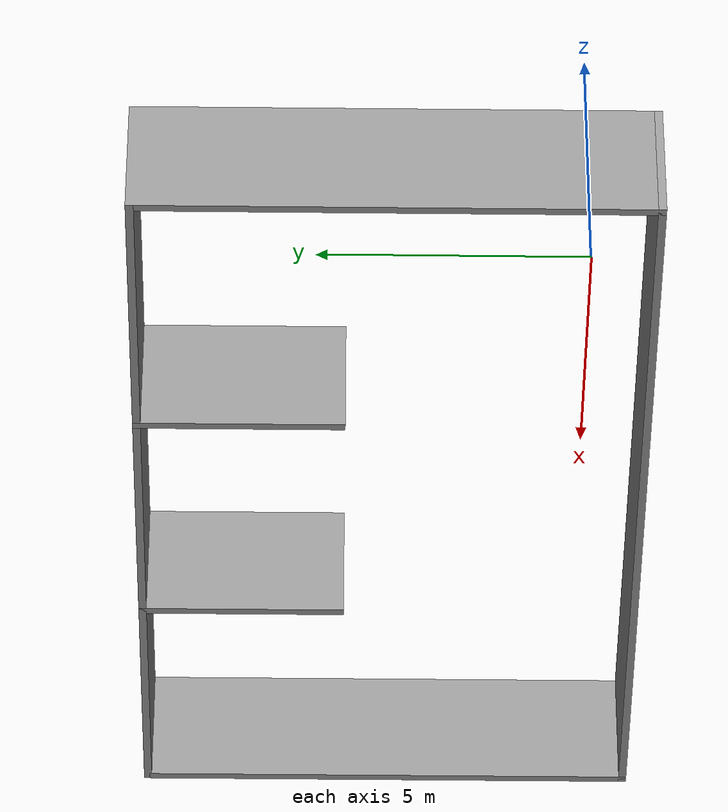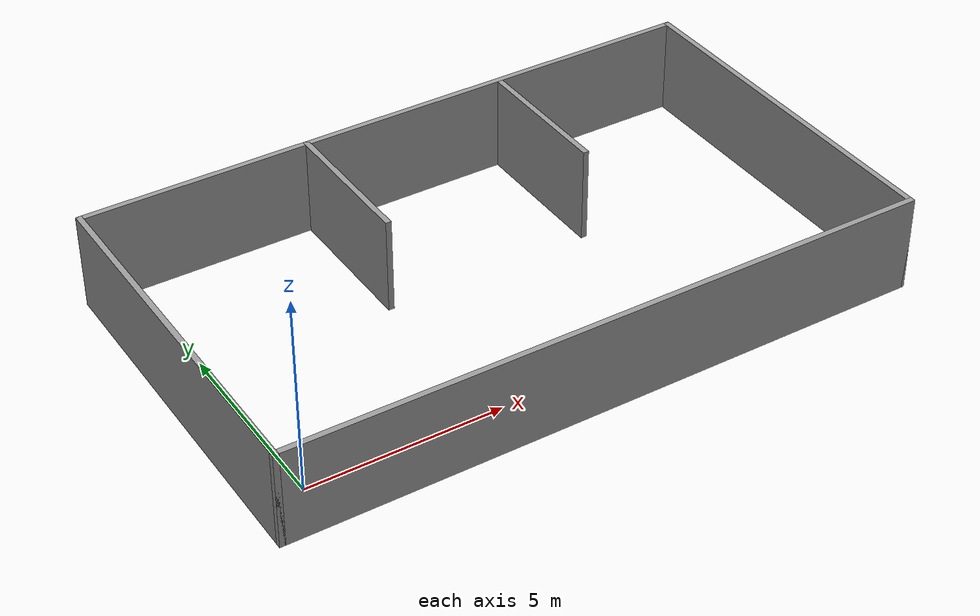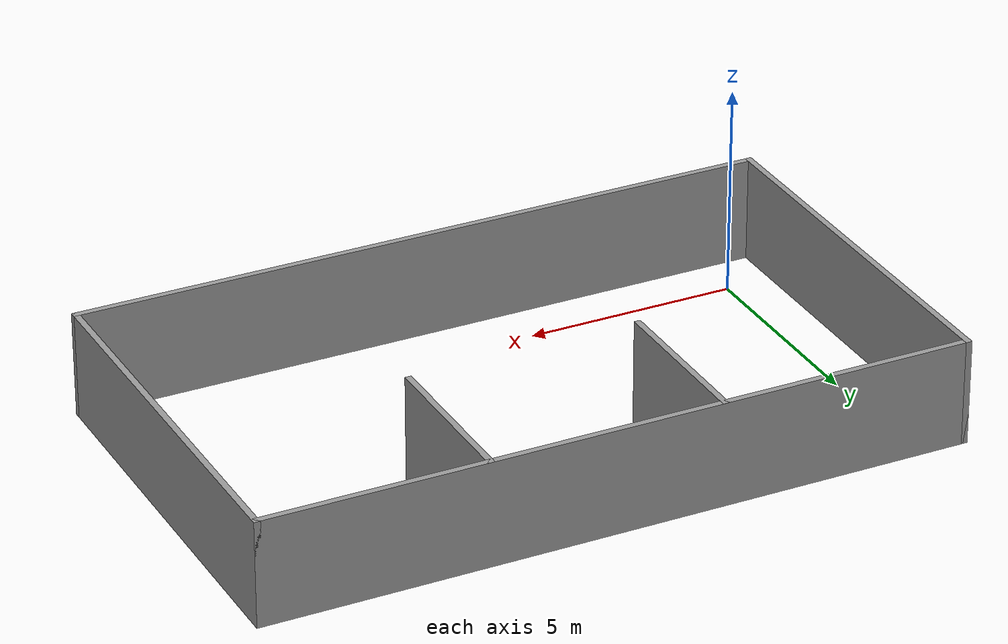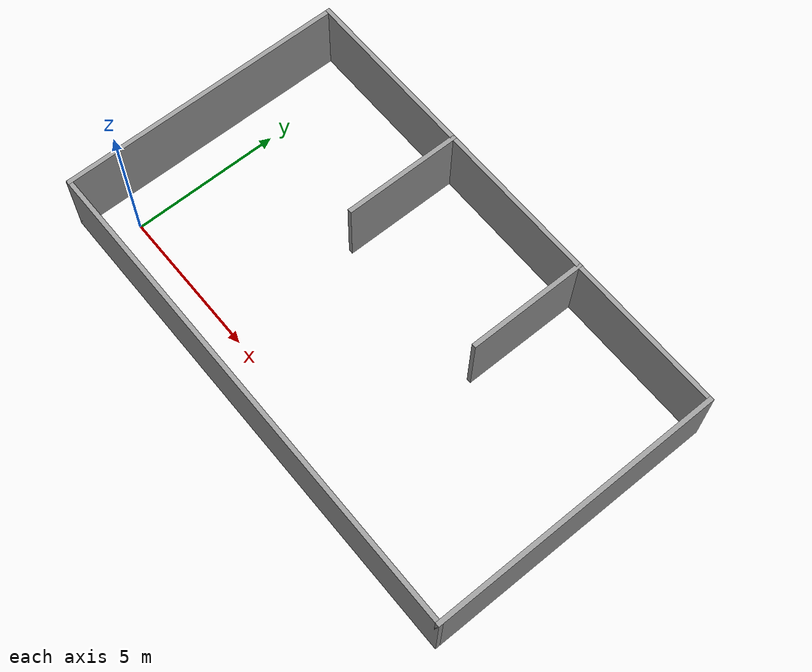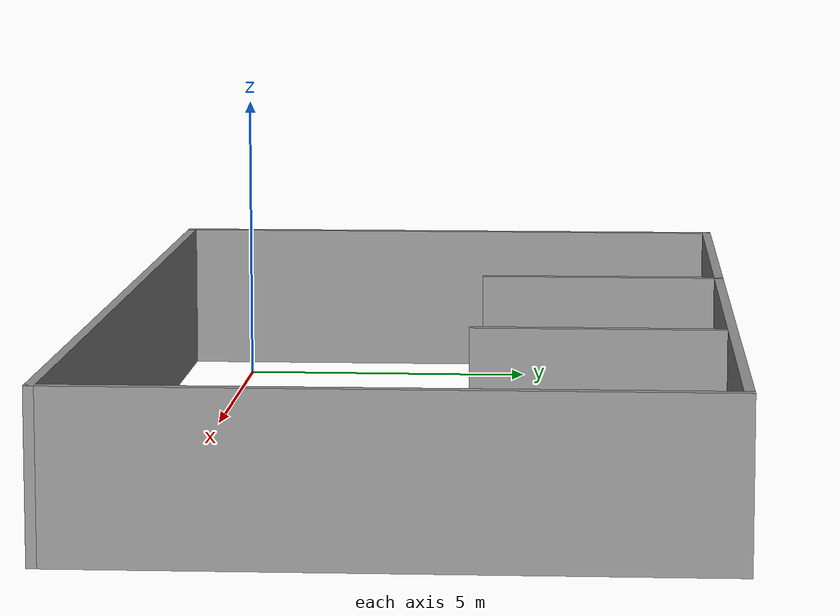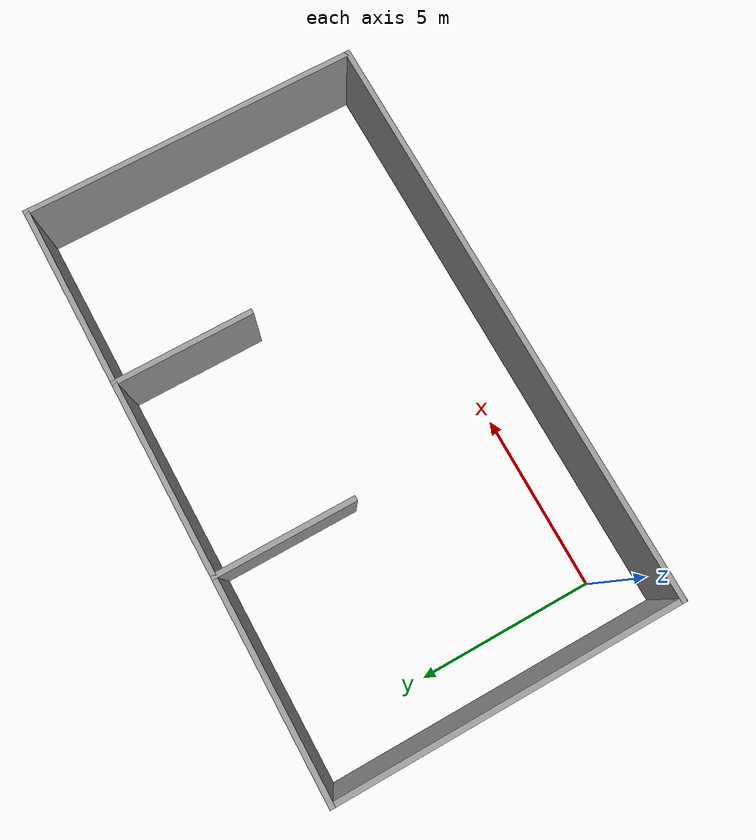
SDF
<?xml version='1.0'?>
<sdf version='1.7'>
  <model name='airport_terminal'>
    <pose>7.1126 3.55766 0 0 -0 0</pose>
    <link name='Wall_10'>
      <collision name='Wall_10_Collision'>
        <geometry>
          <box>
            <size>16.75 0.15 2.5</size>
          </box>
        </geometry>
        <pose>0 0 1.25 0 -0 0</pose>
      </collision>
      <visual name='Wall_10_Visual'>
        <pose>0 0 1.25 0 -0 0</pose>
        <geometry>
          <box>
            <size>16.75 0.15 2.5</size>
          </box>
        </geometry>
        <material>
          <script>
            <uri>file://media/materials/scripts/gazebo.material</uri>
            <name>Gazebo/Grey</name>
          </script>
          <ambient>1 1 1 1</ambient>
        </material>
        <meta>
          <layer>0</layer>
        </meta>
      </visual>
      <pose>-0 4.8 0 0 -0 0</pose>
    </link>
    <link name='Wall_11'>
      <collision name='Wall_11_Collision'>
        <geometry>
          <box>
            <size>9.75 0.15 2.5</size>
          </box>
        </geometry>
        <pose>0 0 1.25 0 -0 0</pose>
      </collision>
      <visual name='Wall_11_Visual'>
        <pose>0 0 1.25 0 -0 0</pose>
        <geometry>
          <box>
            <size>9.75 0.15 2.5</size>
          </box>
        </geometry>
        <material>
          <script>
            <uri>file://media/materials/scripts/gazebo.material</uri>
            <name>Gazebo/Grey</name>
          </script>
          <ambient>1 1 1 1</ambient>
        </material>
        <meta>
          <layer>0</layer>
        </meta>
      </visual>
      <pose>8.3 -0 0 0 -0 -1.5708</pose>
    </link>
    <link name='Wall_13'>
      <collision name='Wall_13_Collision'>
        <geometry>
          <box>
            <size>4 0.15 2.5</size>
          </box>
        </geometry>
        <pose>0 0 1.25 0 -0 0</pose>
      </collision>
      <visual name='Wall_13_Visual'>
        <pose>0 0 1.25 0 -0 0</pose>
        <geometry>
          <box>
            <size>4 0.15 2.5</size>
          </box>
        </geometry>
        <material>
          <script>
            <uri>file://media/materials/scripts/gazebo.material</uri>
            <name>Gazebo/Grey</name>
          </script>
          <ambient>1 1 1 1</ambient>
        </material>
        <meta>
          <layer>0</layer>
        </meta>
      </visual>
      <pose>-2.39573 2.87428 0 0 -0 -1.5708</pose>
    </link>
    <link name='Wall_15'>
      <collision name='Wall_15_Collision'>
        <geometry>
          <box>
            <size>4 0.15 2.5</size>
          </box>
        </geometry>
        <pose>0 0 1.25 0 -0 0</pose>
      </collision>
      <visual name='Wall_15_Visual'>
        <pose>0 0 1.25 0 -0 0</pose>
        <geometry>
          <box>
            <size>4 0.15 2.5</size>
          </box>
        </geometry>
        <material>
          <script>
            <uri>file://media/materials/scripts/gazebo.material</uri>
            <name>Gazebo/Grey</name>
          </script>
          <ambient>1 1 1 1</ambient>
        </material>
        <meta>
          <layer>0</layer>
        </meta>
      </visual>
      <pose>3.06309 2.87428 0 0 -0 -1.5708</pose>
    </link>
    <link name='Wall_6'>
      <collision name='Wall_6_Collision'>
        <geometry>
          <box>
            <size>16.75 0.15 2.5</size>
          </box>
        </geometry>
        <pose>0 0 1.25 0 -0 0</pose>
      </collision>
      <visual name='Wall_6_Visual'>
        <pose>0 0 1.25 0 -0 0</pose>
        <geometry>
          <box>
            <size>16.75 0.15 2.5</size>
          </box>
        </geometry>
        <material>
          <script>
            <uri>file://media/materials/scripts/gazebo.material</uri>
            <name>Gazebo/Grey</name>
          </script>
          <ambient>1 1 1 1</ambient>
        </material>
        <meta>
          <layer>0</layer>
        </meta>
      </visual>
      <pose>-0 -4.8 0 0 -0 0</pose>
    </link>
    <link name='Wall_8'>
      <collision name='Wall_8_Collision'>
        <geometry>
          <box>
            <size>9.75 0.15 2.5</size>
          </box>
        </geometry>
        <pose>0 0 1.25 0 -0 0</pose>
      </collision>
      <visual name='Wall_8_Visual'>
        <pose>0 0 1.25 0 -0 0</pose>
        <geometry>
          <box>
            <size>9.75 0.15 2.5</size>
          </box>
        </geometry>
        <material>
          <script>
            <uri>file://media/materials/scripts/gazebo.material</uri>
            <name>Gazebo/Grey</name>
          </script>
          <ambient>1 1 1 1</ambient>
        </material>
        <meta>
          <layer>0</layer>
        </meta>
      </visual>
      <pose>-8.3 -0 0 0 -0 1.5708</pose>
    </link>
    <static>1</static>
  </model>
</sdf>
